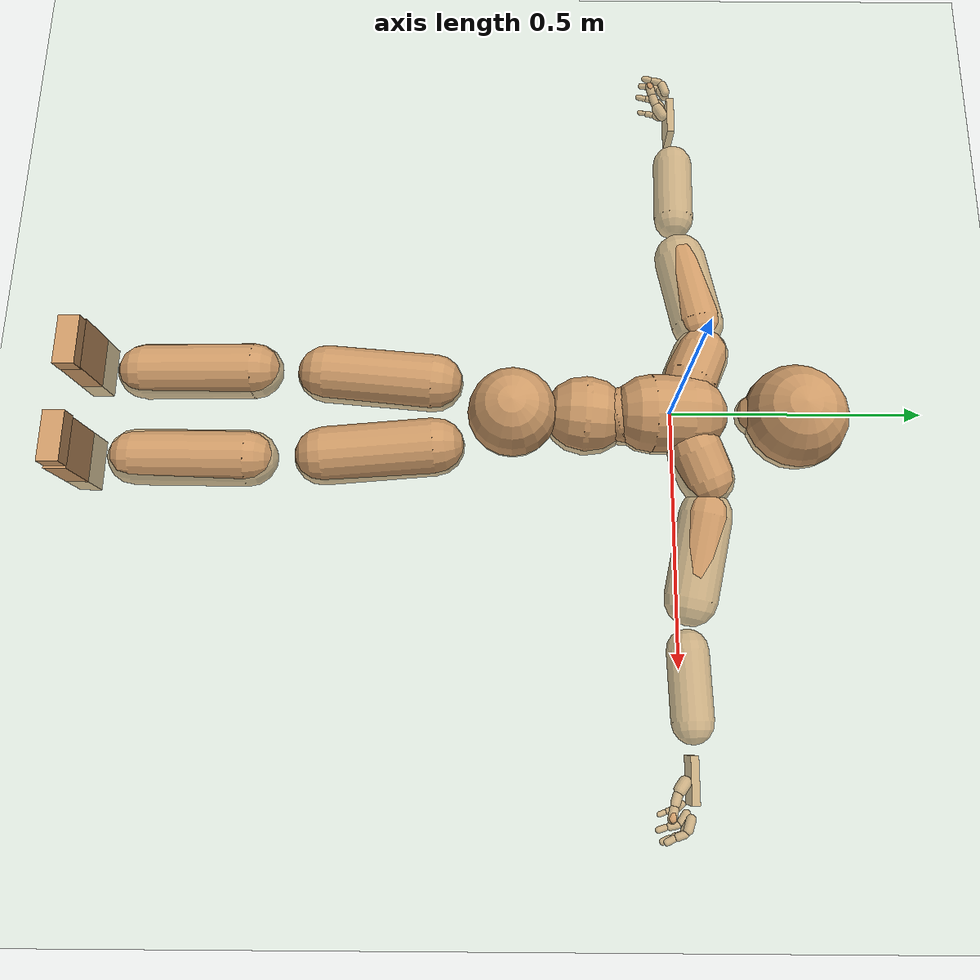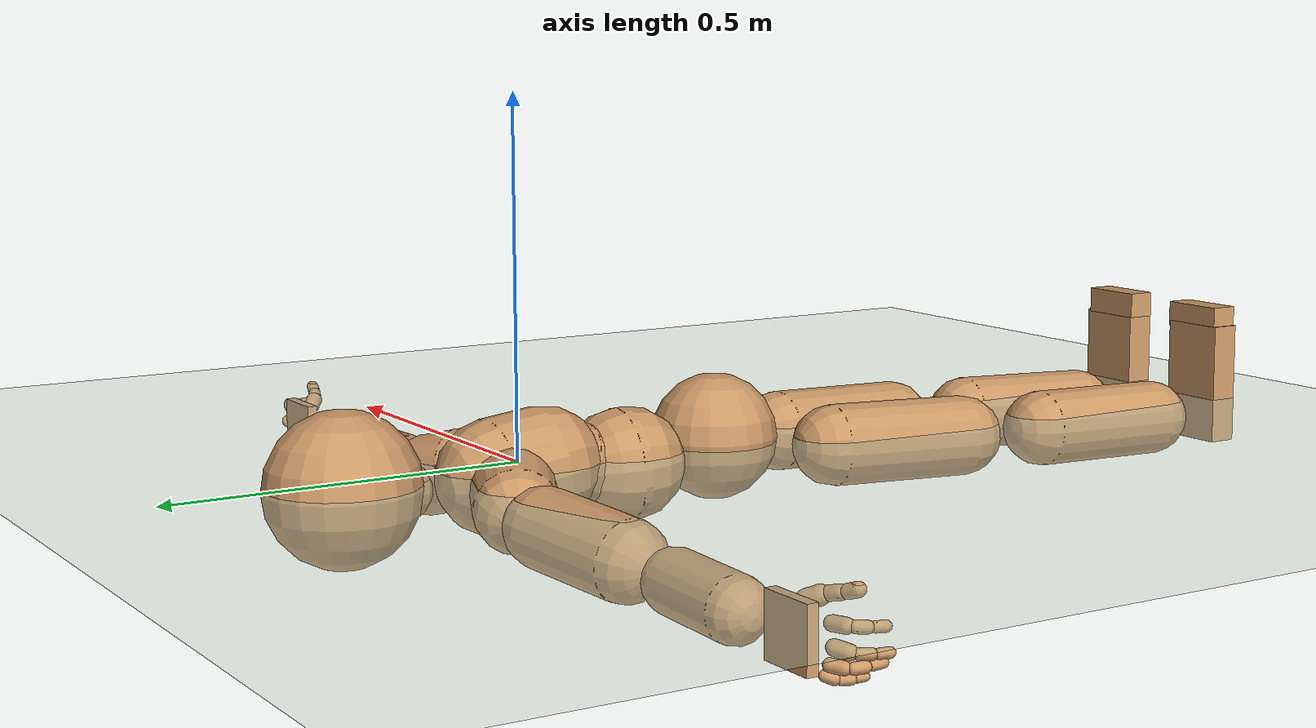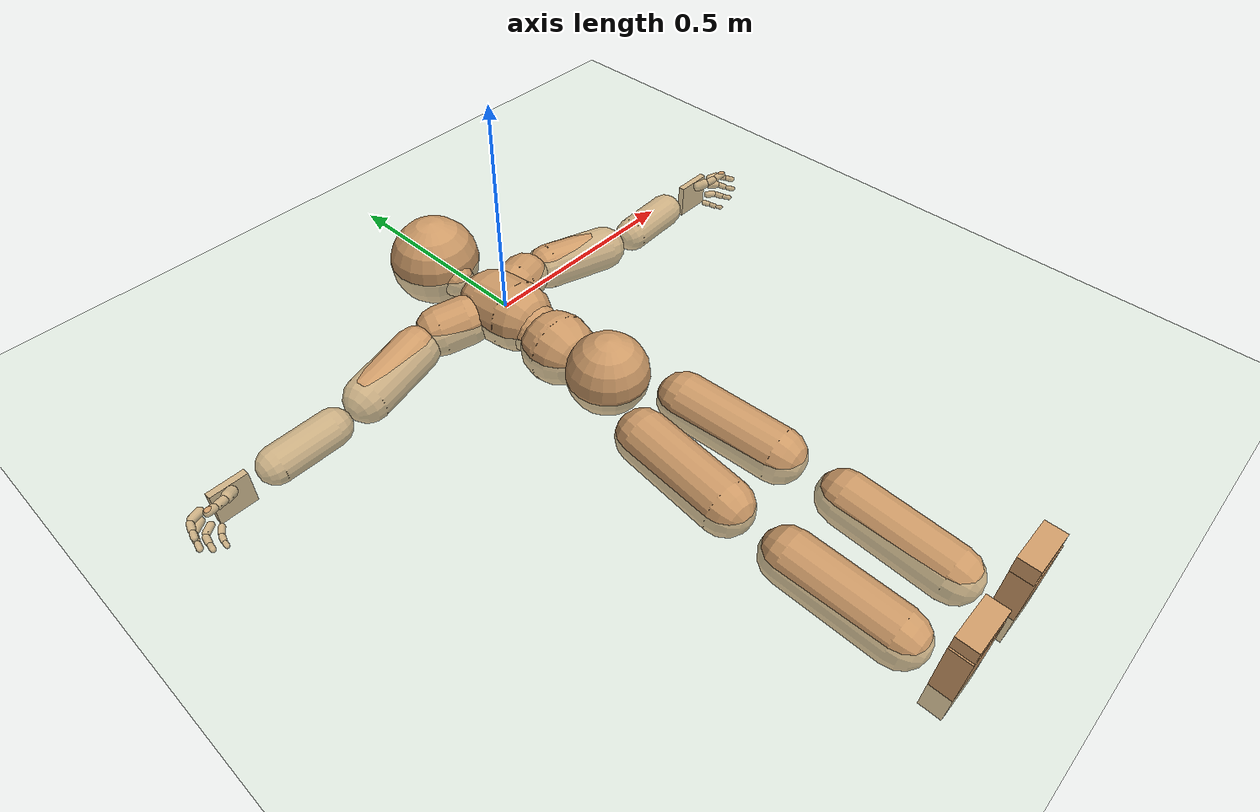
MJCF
<?xml version='1.0' encoding='utf-8'?>
<mujoco model="smplx_mapped_s94">
  <compiler coordinate="local" />
  <default>
    <joint damping="0.0" armature="0.01" stiffness="0.0" limited="true" />
    <geom conaffinity="1" condim="3" contype="7" margin="0.001" rgba="0.8 0.6 .4 1" />
  </default>
  <asset>
    <texture type="skybox" builtin="gradient" rgb1=".4 .5 .6" rgb2="0 0 0" width="100" height="100" />
    <texture builtin="flat" height="1278" mark="cross" markrgb="1 1 1" name="texgeom" random="0.01" rgb1="0.8 0.6 0.4" rgb2="0.8 0.6 0.4" type="cube" width="127" />
    <texture builtin="checker" height="100" name="texplane" rgb1="0 0 0" rgb2="0.8 0.8 0.8" type="2d" width="100" />
    <material name="MatPlane" reflectance="0.5" shininess="1" specular="1" texrepeat="60 60" texture="texplane" />
    <material name="geom" texture="texgeom" texuniform="true" />
  </asset>
  <worldbody>
    <light cutoff="100" diffuse="1 1 1" dir="-0 0 -1.3" directional="true" exponent="1" pos="0 0 1.3" specular=".1 .1 .1" />
    <geom conaffinity="1" condim="3" name="floor" pos="0 0 0" rgba="0.8 0.9 0.8 1" size="100 100 .2" type="plane" material="MatPlane" />
    <body name="Pelvis" pos="0.0003 -0.3142 0.0046">
      <freejoint name="Pelvis" />
      <geom type="sphere" contype="1" conaffinity="1" density="4629.6296296296305" size="0.09" pos="0.0000 0.0000 0.0000" name="Pelvis" />
      <body name="L_Hip" pos="0.0614 -0.0800 -0.0172">
        <joint name="L_Hip_x" type="hinge" pos="0 0 0" axis="1 0 0" stiffness="800" damping="80" armature="0.02" range="-150.00 150.00" />
        <joint name="L_Hip_y" type="hinge" pos="0 0 0" axis="0 1 0" stiffness="800" damping="80" armature="0.02" range="-150.00 150.00" />
        <joint name="L_Hip_z" type="hinge" pos="0 0 0" axis="0 0 1" stiffness="800" damping="80" armature="0.02" range="-150.00 150.00" />
        <geom type="capsule" contype="1" conaffinity="1" density="2040.816327" fromto="0.0060 -0.0740 -0.0028 0.0238 -0.2960 -0.0111" size="0.059" />
        <body name="L_Knee" pos="0.0298 -0.3700 -0.0138">
          <joint name="L_Knee_x" type="hinge" pos="0 0 0" axis="1 0 0" stiffness="800" damping="80" armature="0.02" range="-150.00 150.00" />
          <joint name="L_Knee_y" type="hinge" pos="0 0 0" axis="0 1 0" stiffness="800" damping="80" armature="0.02" range="-150.00 150.00" />
          <joint name="L_Knee_z" type="hinge" pos="0 0 0" axis="0 0 1" stiffness="800" damping="80" armature="0.02" range="-150.00 150.00" />
          <geom type="capsule" contype="1" conaffinity="1" density="1234.567901" fromto="-0.0012 -0.0763 -0.0027 -0.0049 -0.3054 -0.0109" size="0.0564" />
          <body name="L_Ankle" pos="-0.0062 -0.3817 -0.0136">
            <joint name="L_Ankle_x" type="hinge" pos="0 0 0" axis="1 0 0" stiffness="800" damping="80" armature="0.02" range="-150.00 150.00" />
            <joint name="L_Ankle_y" type="hinge" pos="0 0 0" axis="0 1 0" stiffness="800" damping="80" armature="0.02" range="-150.00 150.00" />
            <joint name="L_Ankle_z" type="hinge" pos="0 0 0" axis="0 0 1" stiffness="800" damping="80" armature="0.02" range="-150.00 150.00" />
            <geom type="box" contype="1" conaffinity="1" density="1000" pos="0.0115 -0.0234 0.0566" size="0.0502 0.0216 0.0909" quat="1.0000 0.0000 0.0000 0.0000" />
            <body name="L_Toe" pos="0.0197 -0.0452 0.1067">
              <joint name="L_Toe_x" type="hinge" pos="0 0 0" axis="1 0 0" stiffness="500" damping="50" armature="0.02" range="-150.00 150.00" />
              <joint name="L_Toe_y" type="hinge" pos="0 0 0" axis="0 1 0" stiffness="500" damping="50" armature="0.02" range="-150.00 150.00" />
              <joint name="L_Toe_z" type="hinge" pos="0 0 0" axis="0 0 1" stiffness="500" damping="50" armature="0.02" range="-150.00 150.00" />
              <geom type="box" contype="1" conaffinity="1" density="1000" pos="-0.0115 0.0227 0.0576" size="0.0493 0.0209 0.0194" quat="1.0000 0.0000 0.0000 0.0000" />
            </body>
          </body>
        </body>
      </body>
      <body name="R_Hip" pos="-0.0601 -0.0866 -0.0183">
        <joint name="R_Hip_x" type="hinge" pos="0 0 0" axis="1 0 0" stiffness="800" damping="80" armature="0.02" range="-150.00 150.00" />
        <joint name="R_Hip_y" type="hinge" pos="0 0 0" axis="0 1 0" stiffness="800" damping="80" armature="0.02" range="-150.00 150.00" />
        <joint name="R_Hip_z" type="hinge" pos="0 0 0" axis="0 0 1" stiffness="800" damping="80" armature="0.02" range="-150.00 150.00" />
        <geom type="capsule" contype="1" conaffinity="1" density="2040.816327" fromto="-0.0067 -0.0731 -0.0017 -0.0268 -0.2926 -0.0067" size="0.0588" />
        <body name="R_Knee" pos="-0.0335 -0.3657 -0.0084">
          <joint name="R_Knee_x" type="hinge" pos="0 0 0" axis="1 0 0" stiffness="800" damping="80" armature="0.02" range="-150.00 150.00" />
          <joint name="R_Knee_y" type="hinge" pos="0 0 0" axis="0 1 0" stiffness="800" damping="80" armature="0.02" range="-150.00 150.00" />
          <joint name="R_Knee_z" type="hinge" pos="0 0 0" axis="0 0 1" stiffness="800" damping="80" armature="0.02" range="-150.00 150.00" />
          <geom type="capsule" contype="1" conaffinity="1" density="1234.567901" fromto="0.0003 -0.0746 -0.0019 0.0013 -0.2986 -0.0075" size="0.0564" />
          <body name="R_Ankle" pos="0.0016 -0.3732 -0.0093">
            <joint name="R_Ankle_x" type="hinge" pos="0 0 0" axis="1 0 0" stiffness="800" damping="80" armature="0.02" range="-150.00 150.00" />
            <joint name="R_Ankle_y" type="hinge" pos="0 0 0" axis="0 1 0" stiffness="800" damping="80" armature="0.02" range="-150.00 150.00" />
            <joint name="R_Ankle_z" type="hinge" pos="0 0 0" axis="0 0 1" stiffness="800" damping="80" armature="0.02" range="-150.00 150.00" />
            <geom type="box" contype="1" conaffinity="1" density="1000" pos="-0.0091 -0.0250 0.0535" size="0.0502 0.0216 0.0909" quat="1.0000 0.0000 0.0000 0.0000" />
            <body name="R_Toe" pos="-0.0155 -0.0490 0.1002">
              <joint name="R_Toe_x" type="hinge" pos="0 0 0" axis="1 0 0" stiffness="500" damping="50" armature="0.02" range="-150.00 150.00" />
              <joint name="R_Toe_y" type="hinge" pos="0 0 0" axis="0 1 0" stiffness="500" damping="50" armature="0.02" range="-150.00 150.00" />
              <joint name="R_Toe_z" type="hinge" pos="0 0 0" axis="0 0 1" stiffness="500" damping="50" armature="0.02" range="-150.00 150.00" />
              <geom type="box" contype="1" conaffinity="1" density="1000" pos="0.0091 0.0243 0.0545" size="0.0493 0.0209 0.0194" quat="1.0000 0.0000 0.0000 0.0000" />
            </body>
          </body>
        </body>
      </body>
      <body name="Torso" pos="-0.0047 0.0903 -0.0218">
        <joint name="Torso_x" type="hinge" pos="0 0 0" axis="1 0 0" stiffness="1000" damping="100" armature="0.02" range="-150.00 150.00" />
        <joint name="Torso_y" type="hinge" pos="0 0 0" axis="0 1 0" stiffness="1000" damping="100" armature="0.02" range="-150.00 150.00" />
        <joint name="Torso_z" type="hinge" pos="0 0 0" axis="0 0 1" stiffness="1000" damping="100" armature="0.02" range="-150.00 150.00" />
        <geom type="capsule" contype="1" conaffinity="1" density="1100" fromto="0.0037 0.0514 -0.0024 0.0045 0.0628 -0.0030" size="0.08" />
        <body name="Spine" pos="0.0081 0.1141 -0.0054">
          <joint name="Spine_x" type="hinge" pos="0 0 0" axis="1 0 0" stiffness="1000" damping="100" armature="0.02" range="-150.00 150.00" />
          <joint name="Spine_y" type="hinge" pos="0 0 0" axis="0 1 0" stiffness="1000" damping="100" armature="0.02" range="-150.00 150.00" />
          <joint name="Spine_z" type="hinge" pos="0 0 0" axis="0 0 1" stiffness="1000" damping="100" armature="0.02" range="-150.00 150.00" />
          <geom type="capsule" contype="1" conaffinity="1" density="1100" fromto="-0.0017 0.0202 0.0092 -0.0021 0.0247 0.0113" size="0.06" />
          <body name="Chest" pos="-0.0038 0.0449 0.0205">
            <joint name="Chest_x" type="hinge" pos="0 0 0" axis="1 0 0" stiffness="1000" damping="100" armature="0.02" range="-150.00 150.00" />
            <joint name="Chest_y" type="hinge" pos="0 0 0" axis="0 1 0" stiffness="1000" damping="100" armature="0.02" range="-150.00 150.00" />
            <joint name="Chest_z" type="hinge" pos="0 0 0" axis="0 0 1" stiffness="1000" damping="100" armature="0.02" range="-150.00 150.00" />
            <geom type="capsule" contype="1" conaffinity="1" density="1100" fromto="-0.0006 0.0256 -0.0031 -0.0025 0.1025 -0.0124" size="0.08" />
            <body name="Neck" pos="-0.0059 0.1774 -0.0235">
              <joint name="Neck_x" type="hinge" pos="0 0 0" axis="1 0 0" stiffness="500" damping="50" armature="0.02" range="-150.00 150.00" />
              <joint name="Neck_y" type="hinge" pos="0 0 0" axis="0 1 0" stiffness="500" damping="50" armature="0.02" range="-150.00 150.00" />
              <joint name="Neck_z" type="hinge" pos="0 0 0" axis="0 0 1" stiffness="500" damping="50" armature="0.02" range="-150.00 150.00" />
              <geom type="capsule" contype="1" conaffinity="1" density="1000" fromto="0.0039 0.0630 0.0081 0.0048 0.0770 0.0099" size="0.0437" />
              <body name="Head" pos="0.0088 0.1399 0.0180">
                <joint name="Head_x" type="hinge" pos="0 0 0" axis="1 0 0" stiffness="500" damping="50" armature="0.02" range="-150.00 150.00" />
                <joint name="Head_y" type="hinge" pos="0 0 0" axis="0 1 0" stiffness="500" damping="50" armature="0.02" range="-150.00 150.00" />
                <joint name="Head_z" type="hinge" pos="0 0 0" axis="0 0 1" stiffness="500" damping="50" armature="0.02" range="-150.00 150.00" />
                <geom type="sphere" contype="1" conaffinity="1" density="1000" size="0.1054" pos="0.0000 0.0000 0.0000" name="Head" />
              </body>
            </body>
            <body name="L_Thorax" pos="0.0511 0.1053 -0.0085">
              <joint name="L_Thorax_x" type="hinge" pos="0 0 0" axis="1 0 0" stiffness="500" damping="50" armature="0.02" range="-150.00 150.00" />
              <joint name="L_Thorax_y" type="hinge" pos="0 0 0" axis="0 1 0" stiffness="500" damping="50" armature="0.02" range="-150.00 150.00" />
              <joint name="L_Thorax_z" type="hinge" pos="0 0 0" axis="0 0 1" stiffness="500" damping="50" armature="0.02" range="-150.00 150.00" />
              <geom type="capsule" contype="1" conaffinity="1" density="1000" fromto="0.0186 0.0081 -0.0049 0.0746 0.0326 -0.0196" size="0.0564" />
              <body name="L_Shoulder" pos="0.0932 0.0407 -0.0245">
                <joint name="L_Shoulder_x" type="hinge" pos="0 0 0" axis="1 0 0" stiffness="500" damping="50" armature="0.02" range="-150.00 150.00" />
                <joint name="L_Shoulder_y" type="hinge" pos="0 0 0" axis="0 1 0" stiffness="500" damping="50" armature="0.02" range="-150.00 150.00" />
                <joint name="L_Shoulder_z" type="hinge" pos="0 0 0" axis="0 0 1" stiffness="500" damping="50" armature="0.02" range="-150.00 150.00" />
                <geom type="capsule" contype="1" conaffinity="1" density="1000" fromto="0.0543 -0.0109 -0.0060 0.2171 -0.0436 -0.0241" size="0.0533" />
                <body name="L_Elbow" pos="0.2714 -0.0545 -0.0301">
                  <joint name="L_Elbow_x" type="hinge" pos="0 0 0" axis="1 0 0" stiffness="500" damping="50" armature="0.02" range="-150.00 150.00" />
                  <joint name="L_Elbow_y" type="hinge" pos="0 0 0" axis="0 1 0" stiffness="500" damping="50" armature="0.02" range="-150.00 150.00" />
                  <joint name="L_Elbow_z" type="hinge" pos="0 0 0" axis="0 0 1" stiffness="500" damping="50" armature="0.02" range="-150.00 150.00" />
                  <geom type="capsule" contype="1" conaffinity="1" density="1000" fromto="0.0445 0.0015 0.0008 0.1780 0.0060 0.0033" size="0.0418" />
                  <body name="L_Wrist" pos="0.2367 0.0094 0.0059">
                    <joint name="L_Wrist_x" type="hinge" pos="0 0 0" axis="1 0 0" stiffness="300" damping="30" armature="0.02" range="-180.0000 180.0000"/>
                    <joint name="L_Wrist_y" type="hinge" pos="0 0 0" axis="0 1 0" stiffness="300" damping="30" armature="0.02" range="-180.0000 180.0000"/>
                    <joint name="L_Wrist_z" type="hinge" pos="0 0 0" axis="0 0 1" stiffness="300" damping="30" armature="0.02" range="-180.0000 180.0000"/>
                    <geom type="box" contype="1" conaffinity="1" density="1000" pos="0.0456 -0.0084 -0.0022" size="0.0444 0.0076 0.0414" quat="1.0000 0.0000 0.0000 0.0000"/>
                    <body name="L_Index1" pos="0.107 -0.0141 0.0212">
                      <joint name="L_Index1_x" type="hinge" pos="0 0 0" axis="1 0 0" stiffness="100" damping="10" armature="0.02" range="-5.6250 5.6250"/>
                      <joint name="L_Index1_y" type="hinge" pos="0 0 0" axis="0 1 0" stiffness="100" damping="10" armature="0.02" range="-5.6250 5.6250"/>
                      <joint name="L_Index1_z" type="hinge" pos="0 0 0" axis="0 0 1" stiffness="100" damping="10" armature="0.02" range="-55.6250 55.6250"/>
                      <geom type="capsule" contype="1" conaffinity="1" density="1000" fromto="0.0061 -0.0021 0.0001 0.0246 -0.0082 0.0006" size="0.0093"/>
                      <body name="L_Index2" pos="0.0307 -0.0103 0.0007">
                        <joint name="L_Index2_x" type="hinge" pos="0 0 0" axis="1 0 0" stiffness="100" damping="10" armature="0.02" range="-5.6250 5.6250"/>
                        <joint name="L_Index2_y" type="hinge" pos="0 0 0" axis="0 1 0" stiffness="100" damping="10" armature="0.02" range="-5.6250 5.6250"/>
                        <joint name="L_Index2_z" type="hinge" pos="0 0 0" axis="0 0 1" stiffness="100" damping="10" armature="0.02" range="-55.6250 55.6250"/>
                        <geom type="capsule" contype="1" conaffinity="1" density="1000" fromto="0.0015 -0.0043 -0.0004 0.0059 -0.0170 -0.0017" size="0.0076"/>
                        <body name="L_Index3" pos="0.0074 -0.0213 -0.0021">
                          <joint name="L_Index3_x" type="hinge" pos="0 0 0" axis="1 0 0" stiffness="100" damping="10" armature="0.02" range="-5.6250 5.6250"/>
                          <joint name="L_Index3_y" type="hinge" pos="0 0 0" axis="0 1 0" stiffness="100" damping="10" armature="0.02" range="-5.6250 5.6250"/>
                          <joint name="L_Index3_z" type="hinge" pos="0 0 0" axis="0 0 1" stiffness="100" damping="10" armature="0.02" range="-90.0000 5.6250"/>
                          <geom type="capsule" contype="1" conaffinity="1" density="1000" fromto="0.0019 -0.0039 -0.0000 0.0075 -0.0154 -0.0001" size="0.0067"/>
                        </body>
                      </body>
                    </body>
                    <body name="L_Middle1" pos="0.1143 -0.0116 -0.0028">
                      <joint name="L_Middle1_x" type="hinge" pos="0 0 0" axis="1 0 0" stiffness="100" damping="10" armature="0.02" range="-5.6250 5.6250"/>
                      <joint name="L_Middle1_y" type="hinge" pos="0 0 0" axis="0 1 0" stiffness="100" damping="10" armature="0.02" range="-5.6250 5.6250"/>
                      <joint name="L_Middle1_z" type="hinge" pos="0 0 0" axis="0 0 1" stiffness="100" damping="10" armature="0.02" range="-55.6250 55.6250"/>
                      <geom type="capsule" contype="1" conaffinity="1" density="1000" fromto="0.0054 -0.0029 -0.0010 0.0214 -0.0116 -0.0039" size="0.0096"/>
                      <body name="L_Middle2" pos="0.0268 -0.0145 -0.0048">
                        <joint name="L_Middle2_x" type="hinge" pos="0 0 0" axis="1 0 0" stiffness="100" damping="10" armature="0.02" range="-5.6250 5.6250"/>
                        <joint name="L_Middle2_y" type="hinge" pos="0 0 0" axis="0 1 0" stiffness="100" damping="10" armature="0.02" range="-5.6250 5.6250"/>
                        <joint name="L_Middle2_z" type="hinge" pos="0 0 0" axis="0 0 1" stiffness="100" damping="10" armature="0.02" range="-55.6250 55.6250"/>
                        <geom type="capsule" contype="1" conaffinity="1" density="1000" fromto="0.0013 -0.0046 -0.0004 0.0051 -0.0184 -0.0017" size="0.0071"/>
                        <body name="L_Middle3" pos="0.0063 -0.023 -0.0021">
                          <joint name="L_Middle3_x" type="hinge" pos="0 0 0" axis="1 0 0" stiffness="100" damping="10" armature="0.02" range="-5.6250 5.6250"/>
                          <joint name="L_Middle3_y" type="hinge" pos="0 0 0" axis="0 1 0" stiffness="100" damping="10" armature="0.02" range="-5.6250 5.6250"/>
                          <joint name="L_Middle3_z" type="hinge" pos="0 0 0" axis="0 0 1" stiffness="100" damping="10" armature="0.02" range="-90.0000 5.6250"/>
                          <geom type="capsule" contype="1" conaffinity="1" density="1000" fromto="0.0017 -0.0042 -0.0000 0.0067 -0.0168 -0.0001" size="0.0064"/>
                        </body>
                      </body>
                    </body>
                    <body name="L_Pinky1" pos="0.088 -0.0204 -0.0428">
                      <joint name="L_Pinky1_x" type="hinge" pos="0 0 0" axis="1 0 0" stiffness="100" damping="10" armature="0.02" range="-5.6250 5.6250"/>
                      <joint name="L_Pinky1_y" type="hinge" pos="0 0 0" axis="0 1 0" stiffness="100" damping="10" armature="0.02" range="-5.6250 5.6250"/>
                      <joint name="L_Pinky1_z" type="hinge" pos="0 0 0" axis="0 0 1" stiffness="100" damping="10" armature="0.02" range="-55.6250 55.6250"/>
                      <geom type="capsule" contype="1" conaffinity="1" density="1000" fromto="0.0024 -0.0028 -0.0012 0.0097 -0.0110 -0.0047" size="0.0071"/>
                      <body name="L_Pinky2" pos="0.0122 -0.0138 -0.0058">
                        <joint name="L_Pinky2_x" type="hinge" pos="0 0 0" axis="1 0 0" stiffness="100" damping="10" armature="0.02" range="-5.6250 5.6250"/>
                        <joint name="L_Pinky2_y" type="hinge" pos="0 0 0" axis="0 1 0" stiffness="100" damping="10" armature="0.02" range="-5.6250 5.6250"/>
                        <joint name="L_Pinky2_z" type="hinge" pos="0 0 0" axis="0 0 1" stiffness="100" damping="10" armature="0.02" range="-55.6250 55.6250"/>
                        <geom type="capsule" contype="1" conaffinity="1" density="1000" fromto="0.0008 -0.0037 -0.0001 0.0033 -0.0149 -0.0005" size="0.0064"/>
                        <body name="L_Pinky3" pos="0.0042 -0.0186 -0.0006">
                          <joint name="L_Pinky3_x" type="hinge" pos="0 0 0" axis="1 0 0" stiffness="100" damping="10" armature="0.02" range="-5.6250 5.6250"/>
                          <joint name="L_Pinky3_y" type="hinge" pos="0 0 0" axis="0 1 0" stiffness="100" damping="10" armature="0.02" range="-5.6250 5.6250"/>
                          <joint name="L_Pinky3_z" type="hinge" pos="0 0 0" axis="0 0 1" stiffness="100" damping="10" armature="0.02" range="-90.0000 5.6250"/>
                          <geom type="capsule" contype="1" conaffinity="1" density="1000" fromto="0.0012 -0.0033 0.0003 0.0049 -0.0133 0.0011" size="0.0051"/>
                        </body>
                      </body>
                    </body>
                    <body name="L_Ring1" pos="0.1018 -0.0147 -0.0267">
                      <joint name="L_Ring1_x" type="hinge" pos="0 0 0" axis="1 0 0" stiffness="100" damping="10" armature="0.02" range="-5.6250 5.6250"/>
                      <joint name="L_Ring1_y" type="hinge" pos="0 0 0" axis="0 1 0" stiffness="100" damping="10" armature="0.02" range="-5.6250 5.6250"/>
                      <joint name="L_Ring1_z" type="hinge" pos="0 0 0" axis="0 0 1" stiffness="100" damping="10" armature="0.02" range="-55.6250 55.6250"/>
                      <geom type="capsule" contype="1" conaffinity="1" density="1000" fromto="0.0048 -0.0032 -0.0005 0.0191 -0.0126 -0.0019" size="0.0082"/>
                      <body name="L_Ring2" pos="0.0239 -0.0158 -0.0023">
                        <joint name="L_Ring2_x" type="hinge" pos="0 0 0" axis="1 0 0" stiffness="100" damping="10" armature="0.02" range="-5.6250 5.6250"/>
                        <joint name="L_Ring2_y" type="hinge" pos="0 0 0" axis="0 1 0" stiffness="100" damping="10" armature="0.02" range="-5.6250 5.6250"/>
                        <joint name="L_Ring2_z" type="hinge" pos="0 0 0" axis="0 0 1" stiffness="100" damping="10" armature="0.02" range="-55.6250 55.6250"/>
                        <geom type="capsule" contype="1" conaffinity="1" density="1000" fromto="0.0009 -0.0047 0.0001 0.0036 -0.0187 0.0003" size="0.0073"/>
                        <body name="L_Ring3" pos="0.0045 -0.0234 0.0004">
                          <joint name="L_Ring3_x" type="hinge" pos="0 0 0" axis="1 0 0" stiffness="100" damping="10" armature="0.02" range="-5.6250 5.6250"/>
                          <joint name="L_Ring3_y" type="hinge" pos="0 0 0" axis="0 1 0" stiffness="100" damping="10" armature="0.02" range="-5.6250 5.6250"/>
                          <joint name="L_Ring3_z" type="hinge" pos="0 0 0" axis="0 0 1" stiffness="100" damping="10" armature="0.02" range="-90.0000 5.6250"/>
                          <geom type="capsule" contype="1" conaffinity="1" density="1000" fromto="0.0013 -0.0043 0.0005 0.0052 -0.0171 0.0019" size="0.0061"/>
                        </body>
                      </body>
                    </body>
                    <body name="L_Thumb1" pos="0.0444 -0.023 0.0287">
                      <joint name="L_Thumb1_x" type="hinge" pos="0 0 0" axis="1 0 0" stiffness="100" damping="10" armature="0.02" range="-55.6250 55.6250"/>
                      <joint name="L_Thumb1_y" type="hinge" pos="0 0 0" axis="0 1 0" stiffness="100" damping="10" armature="0.02" range="-55.6250 55.6250"/>
                      <joint name="L_Thumb1_z" type="hinge" pos="0 0 0" axis="0 0 1" stiffness="100" damping="10" armature="0.02" range="-55.6250 55.6250"/>
                      <geom type="capsule" contype="1" conaffinity="1" density="1000" fromto="0.0044 -0.0035 0.0022 0.0176 -0.0139 0.0089" size="0.0123"/>
                      <body name="L_Thumb2" pos="0.022 -0.0174 0.0112">
                        <joint name="L_Thumb2_x" type="hinge" pos="0 0 0" axis="1 0 0" stiffness="100" damping="10" armature="0.02" range="-5.6250 5.6250"/>
                        <joint name="L_Thumb2_y" type="hinge" pos="0 0 0" axis="0 1 0" stiffness="100" damping="10" armature="0.02" range="-5.6250 5.6250"/>
                        <joint name="L_Thumb2_z" type="hinge" pos="0 0 0" axis="0 0 1" stiffness="100" damping="10" armature="0.02" range="-5.6250 5.6250"/>
                        <geom type="capsule" contype="1" conaffinity="1" density="1000" fromto="0.0048 -0.0018 0.0011 0.0191 -0.0071 0.0044" size="0.0093"/>
                        <body name="L_Thumb3" pos="0.0239 -0.0088 0.0055">
                          <joint name="L_Thumb3_x" type="hinge" pos="0 0 0" axis="1 0 0" stiffness="100" damping="10" armature="0.02" range="-5.6250 5.6250"/>
                          <joint name="L_Thumb3_y" type="hinge" pos="0 0 0" axis="0 1 0" stiffness="100" damping="10" armature="0.02" range="-5.6250 5.6250"/>
                          <joint name="L_Thumb3_z" type="hinge" pos="0 0 0" axis="0 0 1" stiffness="100" damping="10" armature="0.02" range="-90.0000 5.6250"/>
                          <geom type="capsule" contype="1" conaffinity="1" density="1000" fromto="0.0052 -0.0014 0.0015 0.0207 -0.0055 0.0060" size="0.0088"/>
                        </body>
                      </body>
                    </body>
                  </body>
                </body>
              </body>
            </body>
            <body name="R_Thorax" pos="-0.0544 0.1016 -0.0144">
              <joint name="R_Thorax_x" type="hinge" pos="0 0 0" axis="1 0 0" stiffness="500" damping="50" armature="0.02" range="-150.00 150.00" />
              <joint name="R_Thorax_y" type="hinge" pos="0 0 0" axis="0 1 0" stiffness="500" damping="50" armature="0.02" range="-150.00 150.00" />
              <joint name="R_Thorax_z" type="hinge" pos="0 0 0" axis="0 0 1" stiffness="500" damping="50" armature="0.02" range="-150.00 150.00" />
              <geom type="capsule" contype="1" conaffinity="1" density="1000" fromto="-0.0201 0.0087 -0.0037 -0.0804 0.0349 -0.0146" size="0.0576" />
              <body name="R_Shoulder" pos="-0.1005 0.0436 -0.0183">
                <joint name="R_Shoulder_x" type="hinge" pos="0 0 0" axis="1 0 0" stiffness="500" damping="50" armature="0.02" range="-150.00 150.00" />
                <joint name="R_Shoulder_y" type="hinge" pos="0 0 0" axis="0 1 0" stiffness="500" damping="50" armature="0.02" range="-150.00 150.00" />
                <joint name="R_Shoulder_z" type="hinge" pos="0 0 0" axis="0 0 1" stiffness="500" damping="50" armature="0.02" range="-150.00 150.00" />
                <geom type="capsule" contype="1" conaffinity="1" density="1000" fromto="-0.0521 -0.0100 -0.0046 -0.2085 -0.0401 -0.0184" size="0.0538" />
                <body name="R_Elbow" pos="-0.2607 -0.0501 -0.0230">
                  <joint name="R_Elbow_x" type="hinge" pos="0 0 0" axis="1 0 0" stiffness="500" damping="50" armature="0.02" range="-150.00 150.00" />
                  <joint name="R_Elbow_y" type="hinge" pos="0 0 0" axis="0 1 0" stiffness="500" damping="50" armature="0.02" range="-150.00 150.00" />
                  <joint name="R_Elbow_z" type="hinge" pos="0 0 0" axis="0 0 1" stiffness="500" damping="50" armature="0.02" range="-150.00 150.00" />
                  <geom type="capsule" contype="1" conaffinity="1" density="1000" fromto="-0.0447 0.0006 -0.0009 -0.1787 0.0025 -0.0037" size="0.042" />
                  <body name="R_Wrist" pos="-0.2372 0.005 -0.0038">
                    <joint name="R_Wrist_x" type="hinge" pos="0 0 0" axis="1 0 0" stiffness="300" damping="30" armature="0.02" range="-180.0000 180.0000"/>
                    <joint name="R_Wrist_y" type="hinge" pos="0 0 0" axis="0 1 0" stiffness="300" damping="30" armature="0.02" range="-180.0000 180.0000"/>
                    <joint name="R_Wrist_z" type="hinge" pos="0 0 0" axis="0 0 1" stiffness="300" damping="30" armature="0.02" range="-180.0000 180.0000"/>
                    <geom type="box" contype="1" conaffinity="1" density="1000" pos="-0.0449 -0.0080 -0.0014" size="0.0416 0.0078 0.0414" quat="1.0000 0.0000 0.0000 0.0000"/>
                    <body name="R_Index1" pos="-0.1057 -0.0132 0.0229">
                      <joint name="R_Index1_x" type="hinge" pos="0 0 0" axis="1 0 0" stiffness="100" damping="10" armature="0.02" range="-5.6250 5.6250"/>
                      <joint name="R_Index1_y" type="hinge" pos="0 0 0" axis="0 1 0" stiffness="100" damping="10" armature="0.02" range="-5.6250 5.6250"/>
                      <joint name="R_Index1_z" type="hinge" pos="0 0 0" axis="0 0 1" stiffness="100" damping="10" armature="0.02" range="-55.6250 55.6250"/>
                      <geom type="capsule" contype="1" conaffinity="1" density="1000" fromto="-0.0061 -0.0021 0.0001 -0.0246 -0.0082 0.0006" size="0.0093"/>
                      <body name="R_Index2" pos="-0.0307 -0.0103 0.0007">
                        <joint name="R_Index2_x" type="hinge" pos="0 0 0" axis="1 0 0" stiffness="100" damping="10" armature="0.02" range="-5.6250 5.6250"/>
                        <joint name="R_Index2_y" type="hinge" pos="0 0 0" axis="0 1 0" stiffness="100" damping="10" armature="0.02" range="-5.6250 5.6250"/>
                        <joint name="R_Index2_z" type="hinge" pos="0 0 0" axis="0 0 1" stiffness="100" damping="10" armature="0.02" range="-55.6250 55.6250"/>
                        <geom type="capsule" contype="1" conaffinity="1" density="1000" fromto="-0.0015 -0.0043 -0.0004 -0.0059 -0.0170 -0.0017" size="0.0076"/>
                        <body name="R_Index3" pos="-0.0074 -0.0213 -0.0021">
                          <joint name="R_Index3_x" type="hinge" pos="0 0 0" axis="1 0 0" stiffness="100" damping="10" armature="0.02" range="-5.6250 5.6250"/>
                          <joint name="R_Index3_y" type="hinge" pos="0 0 0" axis="0 1 0" stiffness="100" damping="10" armature="0.02" range="-5.6250 5.6250"/>
                          <joint name="R_Index3_z" type="hinge" pos="0 0 0" axis="0 0 1" stiffness="100" damping="10" armature="0.02" range="-5.6250 90.0000"/>
                          <geom type="capsule" contype="1" conaffinity="1" density="1000" fromto="-0.0011 -0.0039 -0.0000 -0.0043 -0.0154 -0.0001" size="0.0068"/>
                        </body>
                      </body>
                    </body>
                    <body name="R_Middle1" pos="-0.113 -0.0107 -0.0011">
                      <joint name="R_Middle1_x" type="hinge" pos="0 0 0" axis="1 0 0" stiffness="100" damping="10" armature="0.02" range="-5.6250 5.6250"/>
                      <joint name="R_Middle1_y" type="hinge" pos="0 0 0" axis="0 1 0" stiffness="100" damping="10" armature="0.02" range="-5.6250 5.6250"/>
                      <joint name="R_Middle1_z" type="hinge" pos="0 0 0" axis="0 0 1" stiffness="100" damping="10" armature="0.02" range="-55.6250 55.6250"/>
                      <geom type="capsule" contype="1" conaffinity="1" density="1000" fromto="-0.0054 -0.0029 -0.0010 -0.0214 -0.0116 -0.0039" size="0.0096"/>
                      <body name="R_Middle2" pos="-0.0268 -0.0145 -0.0048">
                        <joint name="R_Middle2_x" type="hinge" pos="0 0 0" axis="1 0 0" stiffness="100" damping="10" armature="0.02" range="-5.6250 5.6250"/>
                        <joint name="R_Middle2_y" type="hinge" pos="0 0 0" axis="0 1 0" stiffness="100" damping="10" armature="0.02" range="-5.6250 5.6250"/>
                        <joint name="R_Middle2_z" type="hinge" pos="0 0 0" axis="0 0 1" stiffness="100" damping="10" armature="0.02" range="-55.6250 55.6250"/>
                        <geom type="capsule" contype="1" conaffinity="1" density="1000" fromto="-0.0013 -0.0046 -0.0004 -0.0051 -0.0184 -0.0017" size="0.0071"/>
                        <body name="R_Middle3" pos="-0.0063 -0.023 -0.0021">
                          <joint name="R_Middle3_x" type="hinge" pos="0 0 0" axis="1 0 0" stiffness="100" damping="10" armature="0.02" range="-5.6250 5.6250"/>
                          <joint name="R_Middle3_y" type="hinge" pos="0 0 0" axis="0 1 0" stiffness="100" damping="10" armature="0.02" range="-5.6250 5.6250"/>
                          <joint name="R_Middle3_z" type="hinge" pos="0 0 0" axis="0 0 1" stiffness="100" damping="10" armature="0.02" range="-5.6250 90.0000"/>
                          <geom type="capsule" contype="1" conaffinity="1" density="1000" fromto="-0.0009 -0.0042 -0.0000 -0.0035 -0.0168 -0.0001" size="0.0064"/>
                        </body>
                      </body>
                    </body>
                    <body name="R_Pinky1" pos="-0.0867 -0.0196 -0.0411">
                      <joint name="R_Pinky1_x" type="hinge" pos="0 0 0" axis="1 0 0" stiffness="100" damping="10" armature="0.02" range="-5.6250 5.6250"/>
                      <joint name="R_Pinky1_y" type="hinge" pos="0 0 0" axis="0 1 0" stiffness="100" damping="10" armature="0.02" range="-5.6250 5.6250"/>
                      <joint name="R_Pinky1_z" type="hinge" pos="0 0 0" axis="0 0 1" stiffness="100" damping="10" armature="0.02" range="-55.6250 55.6250"/>
                      <geom type="capsule" contype="1" conaffinity="1" density="1000" fromto="-0.0024 -0.0028 -0.0012 -0.0097 -0.0110 -0.0047" size="0.0071"/>
                      <body name="R_Pinky2" pos="-0.0122 -0.0138 -0.0058">
                        <joint name="R_Pinky2_x" type="hinge" pos="0 0 0" axis="1 0 0" stiffness="100" damping="10" armature="0.02" range="-5.6250 5.6250"/>
                        <joint name="R_Pinky2_y" type="hinge" pos="0 0 0" axis="0 1 0" stiffness="100" damping="10" armature="0.02" range="-5.6250 5.6250"/>
                        <joint name="R_Pinky2_z" type="hinge" pos="0 0 0" axis="0 0 1" stiffness="100" damping="10" armature="0.02" range="-55.6250 55.6250"/>
                        <geom type="capsule" contype="1" conaffinity="1" density="1000" fromto="-0.0008 -0.0037 -0.0001 -0.0033 -0.0149 -0.0005" size="0.0064"/>
                        <body name="R_Pinky3" pos="-0.0042 -0.0186 -0.0006">
                          <joint name="R_Pinky3_x" type="hinge" pos="0 0 0" axis="1 0 0" stiffness="100" damping="10" armature="0.02" range="-5.6250 5.6250"/>
                          <joint name="R_Pinky3_y" type="hinge" pos="0 0 0" axis="0 1 0" stiffness="100" damping="10" armature="0.02" range="-5.6250 5.6250"/>
                          <joint name="R_Pinky3_z" type="hinge" pos="0 0 0" axis="0 0 1" stiffness="100" damping="10" armature="0.02" range="-5.6250 90.0000"/>
                          <geom type="capsule" contype="1" conaffinity="1" density="1000" fromto="-0.0004 -0.0033 0.0003 -0.0017 -0.0133 0.0011" size="0.0052"/>
                        </body>
                      </body>
                    </body>
                    <body name="R_Ring1" pos="-0.1005 -0.0139 -0.025">
                      <joint name="R_Ring1_x" type="hinge" pos="0 0 0" axis="1 0 0" stiffness="100" damping="10" armature="0.02" range="-5.6250 5.6250"/>
                      <joint name="R_Ring1_y" type="hinge" pos="0 0 0" axis="0 1 0" stiffness="100" damping="10" armature="0.02" range="-5.6250 5.6250"/>
                      <joint name="R_Ring1_z" type="hinge" pos="0 0 0" axis="0 0 1" stiffness="100" damping="10" armature="0.02" range="-55.6250 55.6250"/>
                      <geom type="capsule" contype="1" conaffinity="1" density="1000" fromto="-0.0048 -0.0032 -0.0005 -0.0191 -0.0126 -0.0019" size="0.0082"/>
                      <body name="R_Ring2" pos="-0.0238 -0.0158 -0.0023">
                        <joint name="R_Ring2_x" type="hinge" pos="0 0 0" axis="1 0 0" stiffness="100" damping="10" armature="0.02" range="-5.6250 5.6250"/>
                        <joint name="R_Ring2_y" type="hinge" pos="0 0 0" axis="0 1 0" stiffness="100" damping="10" armature="0.02" range="-5.6250 5.6250"/>
                        <joint name="R_Ring2_z" type="hinge" pos="0 0 0" axis="0 0 1" stiffness="100" damping="10" armature="0.02" range="-55.6250 55.6250"/>
                        <geom type="capsule" contype="1" conaffinity="1" density="1000" fromto="-0.0009 -0.0047 0.0001 -0.0036 -0.0187 0.0003" size="0.0073"/>
                        <body name="R_Ring3" pos="-0.0045 -0.0234 0.0004">
                          <joint name="R_Ring3_x" type="hinge" pos="0 0 0" axis="1 0 0" stiffness="100" damping="10" armature="0.02" range="-5.6250 5.6250"/>
                          <joint name="R_Ring3_y" type="hinge" pos="0 0 0" axis="0 1 0" stiffness="100" damping="10" armature="0.02" range="-5.6250 5.6250"/>
                          <joint name="R_Ring3_z" type="hinge" pos="0 0 0" axis="0 0 1" stiffness="100" damping="10" armature="0.02" range="-5.6250 90.0000"/>
                          <geom type="capsule" contype="1" conaffinity="1" density="1000" fromto="-0.0005 -0.0043 0.0005 -0.0020 -0.0171 0.0019" size="0.0061"/>
                        </body>
                      </body>
                    </body>
                    <body name="R_Thumb1" pos="-0.043 -0.0222 0.0304">
                      <joint name="R_Thumb1_x" type="hinge" pos="0 0 0" axis="1 0 0" stiffness="100" damping="10" armature="0.02" range="-55.6250 55.6250"/>
                      <joint name="R_Thumb1_y" type="hinge" pos="0 0 0" axis="0 1 0" stiffness="100" damping="10" armature="0.02" range="-55.6250 55.6250"/>
                      <joint name="R_Thumb1_z" type="hinge" pos="0 0 0" axis="0 0 1" stiffness="100" damping="10" armature="0.02" range="-55.6250 55.6250"/>
                      <geom type="capsule" contype="1" conaffinity="1" density="1000" fromto="-0.0044 -0.0035 0.0022 -0.0176 -0.0139 0.0089" size="0.0123"/>
                      <body name="R_Thumb2" pos="-0.022 -0.0174 0.0112">
                        <joint name="R_Thumb2_x" type="hinge" pos="0 0 0" axis="1 0 0" stiffness="100" damping="10" armature="0.02" range="-5.6250 5.6250"/>
                        <joint name="R_Thumb2_y" type="hinge" pos="0 0 0" axis="0 1 0" stiffness="100" damping="10" armature="0.02" range="-5.6250 5.6250"/>
                        <joint name="R_Thumb2_z" type="hinge" pos="0 0 0" axis="0 0 1" stiffness="100" damping="10" armature="0.02" range="-5.6250 5.6250"/>
                        <geom type="capsule" contype="1" conaffinity="1" density="1000" fromto="-0.0048 -0.0018 0.0011 -0.0191 -0.0071 0.0044" size="0.0093"/>
                        <body name="R_Thumb3" pos="-0.0239 -0.0088 0.0055">
                          <joint name="R_Thumb3_x" type="hinge" pos="0 0 0" axis="1 0 0" stiffness="100" damping="10" armature="0.02" range="-5.6250 5.6250"/>
                          <joint name="R_Thumb3_y" type="hinge" pos="0 0 0" axis="0 1 0" stiffness="100" damping="10" armature="0.02" range="-5.6250 5.6250"/>
                          <joint name="R_Thumb3_z" type="hinge" pos="0 0 0" axis="0 0 1" stiffness="100" damping="10" armature="0.02" range="-5.6250 90.0000"/>
                          <geom type="capsule" contype="1" conaffinity="1" density="1000" fromto="-0.0044 -0.0014 0.0015 -0.0175 -0.0055 0.0060" size="0.0091"/>
                        </body>
                      </body>
                    </body>
                  </body>
                </body>
              </body>
            </body>
          </body>
        </body>
      </body>
    </body>
  </worldbody>
  <actuator>
    <motor name="L_Hip_x" joint="L_Hip_x" gear="1" />
    <motor name="L_Hip_y" joint="L_Hip_y" gear="1" />
    <motor name="L_Hip_z" joint="L_Hip_z" gear="1" />
    <motor name="L_Knee_x" joint="L_Knee_x" gear="1" />
    <motor name="L_Knee_y" joint="L_Knee_y" gear="1" />
    <motor name="L_Knee_z" joint="L_Knee_z" gear="1" />
    <motor name="L_Ankle_x" joint="L_Ankle_x" gear="1" />
    <motor name="L_Ankle_y" joint="L_Ankle_y" gear="1" />
    <motor name="L_Ankle_z" joint="L_Ankle_z" gear="1" />
    <motor name="L_Toe_x" joint="L_Toe_x" gear="1" />
    <motor name="L_Toe_y" joint="L_Toe_y" gear="1" />
    <motor name="L_Toe_z" joint="L_Toe_z" gear="1" />
    <motor name="R_Hip_x" joint="R_Hip_x" gear="1" />
    <motor name="R_Hip_y" joint="R_Hip_y" gear="1" />
    <motor name="R_Hip_z" joint="R_Hip_z" gear="1" />
    <motor name="R_Knee_x" joint="R_Knee_x" gear="1" />
    <motor name="R_Knee_y" joint="R_Knee_y" gear="1" />
    <motor name="R_Knee_z" joint="R_Knee_z" gear="1" />
    <motor name="R_Ankle_x" joint="R_Ankle_x" gear="1" />
    <motor name="R_Ankle_y" joint="R_Ankle_y" gear="1" />
    <motor name="R_Ankle_z" joint="R_Ankle_z" gear="1" />
    <motor name="R_Toe_x" joint="R_Toe_x" gear="1" />
    <motor name="R_Toe_y" joint="R_Toe_y" gear="1" />
    <motor name="R_Toe_z" joint="R_Toe_z" gear="1" />
    <motor name="Torso_x" joint="Torso_x" gear="1" />
    <motor name="Torso_y" joint="Torso_y" gear="1" />
    <motor name="Torso_z" joint="Torso_z" gear="1" />
    <motor name="Spine_x" joint="Spine_x" gear="1" />
    <motor name="Spine_y" joint="Spine_y" gear="1" />
    <motor name="Spine_z" joint="Spine_z" gear="1" />
    <motor name="Chest_x" joint="Chest_x" gear="1" />
    <motor name="Chest_y" joint="Chest_y" gear="1" />
    <motor name="Chest_z" joint="Chest_z" gear="1" />
    <motor name="Neck_x" joint="Neck_x" gear="1" />
    <motor name="Neck_y" joint="Neck_y" gear="1" />
    <motor name="Neck_z" joint="Neck_z" gear="1" />
    <motor name="Head_x" joint="Head_x" gear="1" />
    <motor name="Head_y" joint="Head_y" gear="1" />
    <motor name="Head_z" joint="Head_z" gear="1" />
    <motor name="L_Thorax_x" joint="L_Thorax_x" gear="1" />
    <motor name="L_Thorax_y" joint="L_Thorax_y" gear="1" />
    <motor name="L_Thorax_z" joint="L_Thorax_z" gear="1" />
    <motor name="L_Shoulder_x" joint="L_Shoulder_x" gear="1" />
    <motor name="L_Shoulder_y" joint="L_Shoulder_y" gear="1" />
    <motor name="L_Shoulder_z" joint="L_Shoulder_z" gear="1" />
    <motor name="L_Elbow_x" joint="L_Elbow_x" gear="1" />
    <motor name="L_Elbow_y" joint="L_Elbow_y" gear="1" />
    <motor name="L_Elbow_z" joint="L_Elbow_z" gear="1" />
    <motor name="L_Wrist_x" joint="L_Wrist_x" gear="1" />
    <motor name="L_Wrist_y" joint="L_Wrist_y" gear="1" />
    <motor name="L_Wrist_z" joint="L_Wrist_z" gear="1" />
    <motor name="L_Index1_x" joint="L_Index1_x" gear="1" />
    <motor name="L_Index1_y" joint="L_Index1_y" gear="1" />
    <motor name="L_Index1_z" joint="L_Index1_z" gear="1" />
    <motor name="L_Index2_x" joint="L_Index2_x" gear="1" />
    <motor name="L_Index2_y" joint="L_Index2_y" gear="1" />
    <motor name="L_Index2_z" joint="L_Index2_z" gear="1" />
    <motor name="L_Index3_x" joint="L_Index3_x" gear="1" />
    <motor name="L_Index3_y" joint="L_Index3_y" gear="1" />
    <motor name="L_Index3_z" joint="L_Index3_z" gear="1" />
    <motor name="L_Middle1_x" joint="L_Middle1_x" gear="1" />
    <motor name="L_Middle1_y" joint="L_Middle1_y" gear="1" />
    <motor name="L_Middle1_z" joint="L_Middle1_z" gear="1" />
    <motor name="L_Middle2_x" joint="L_Middle2_x" gear="1" />
    <motor name="L_Middle2_y" joint="L_Middle2_y" gear="1" />
    <motor name="L_Middle2_z" joint="L_Middle2_z" gear="1" />
    <motor name="L_Middle3_x" joint="L_Middle3_x" gear="1" />
    <motor name="L_Middle3_y" joint="L_Middle3_y" gear="1" />
    <motor name="L_Middle3_z" joint="L_Middle3_z" gear="1" />
    <motor name="L_Pinky1_x" joint="L_Pinky1_x" gear="1" />
    <motor name="L_Pinky1_y" joint="L_Pinky1_y" gear="1" />
    <motor name="L_Pinky1_z" joint="L_Pinky1_z" gear="1" />
    <motor name="L_Pinky2_x" joint="L_Pinky2_x" gear="1" />
    <motor name="L_Pinky2_y" joint="L_Pinky2_y" gear="1" />
    <motor name="L_Pinky2_z" joint="L_Pinky2_z" gear="1" />
    <motor name="L_Pinky3_x" joint="L_Pinky3_x" gear="1" />
    <motor name="L_Pinky3_y" joint="L_Pinky3_y" gear="1" />
    <motor name="L_Pinky3_z" joint="L_Pinky3_z" gear="1" />
    <motor name="L_Ring1_x" joint="L_Ring1_x" gear="1" />
    <motor name="L_Ring1_y" joint="L_Ring1_y" gear="1" />
    <motor name="L_Ring1_z" joint="L_Ring1_z" gear="1" />
    <motor name="L_Ring2_x" joint="L_Ring2_x" gear="1" />
    <motor name="L_Ring2_y" joint="L_Ring2_y" gear="1" />
    <motor name="L_Ring2_z" joint="L_Ring2_z" gear="1" />
    <motor name="L_Ring3_x" joint="L_Ring3_x" gear="1" />
    <motor name="L_Ring3_y" joint="L_Ring3_y" gear="1" />
    <motor name="L_Ring3_z" joint="L_Ring3_z" gear="1" />
    <motor name="L_Thumb1_x" joint="L_Thumb1_x" gear="1" />
    <motor name="L_Thumb1_y" joint="L_Thumb1_y" gear="1" />
    <motor name="L_Thumb1_z" joint="L_Thumb1_z" gear="1" />
    <motor name="L_Thumb2_x" joint="L_Thumb2_x" gear="1" />
    <motor name="L_Thumb2_y" joint="L_Thumb2_y" gear="1" />
    <motor name="L_Thumb2_z" joint="L_Thumb2_z" gear="1" />
    <motor name="L_Thumb3_x" joint="L_Thumb3_x" gear="1" />
    <motor name="L_Thumb3_y" joint="L_Thumb3_y" gear="1" />
    <motor name="L_Thumb3_z" joint="L_Thumb3_z" gear="1" />
    <motor name="R_Thorax_x" joint="R_Thorax_x" gear="1" />
    <motor name="R_Thorax_y" joint="R_Thorax_y" gear="1" />
    <motor name="R_Thorax_z" joint="R_Thorax_z" gear="1" />
    <motor name="R_Shoulder_x" joint="R_Shoulder_x" gear="1" />
    <motor name="R_Shoulder_y" joint="R_Shoulder_y" gear="1" />
    <motor name="R_Shoulder_z" joint="R_Shoulder_z" gear="1" />
    <motor name="R_Elbow_x" joint="R_Elbow_x" gear="1" />
    <motor name="R_Elbow_y" joint="R_Elbow_y" gear="1" />
    <motor name="R_Elbow_z" joint="R_Elbow_z" gear="1" />
    <motor name="R_Wrist_x" joint="R_Wrist_x" gear="1" />
    <motor name="R_Wrist_y" joint="R_Wrist_y" gear="1" />
    <motor name="R_Wrist_z" joint="R_Wrist_z" gear="1" />
    <motor name="R_Index1_x" joint="R_Index1_x" gear="1" />
    <motor name="R_Index1_y" joint="R_Index1_y" gear="1" />
    <motor name="R_Index1_z" joint="R_Index1_z" gear="1" />
    <motor name="R_Index2_x" joint="R_Index2_x" gear="1" />
    <motor name="R_Index2_y" joint="R_Index2_y" gear="1" />
    <motor name="R_Index2_z" joint="R_Index2_z" gear="1" />
    <motor name="R_Index3_x" joint="R_Index3_x" gear="1" />
    <motor name="R_Index3_y" joint="R_Index3_y" gear="1" />
    <motor name="R_Index3_z" joint="R_Index3_z" gear="1" />
    <motor name="R_Middle1_x" joint="R_Middle1_x" gear="1" />
    <motor name="R_Middle1_y" joint="R_Middle1_y" gear="1" />
    <motor name="R_Middle1_z" joint="R_Middle1_z" gear="1" />
    <motor name="R_Middle2_x" joint="R_Middle2_x" gear="1" />
    <motor name="R_Middle2_y" joint="R_Middle2_y" gear="1" />
    <motor name="R_Middle2_z" joint="R_Middle2_z" gear="1" />
    <motor name="R_Middle3_x" joint="R_Middle3_x" gear="1" />
    <motor name="R_Middle3_y" joint="R_Middle3_y" gear="1" />
    <motor name="R_Middle3_z" joint="R_Middle3_z" gear="1" />
    <motor name="R_Pinky1_x" joint="R_Pinky1_x" gear="1" />
    <motor name="R_Pinky1_y" joint="R_Pinky1_y" gear="1" />
    <motor name="R_Pinky1_z" joint="R_Pinky1_z" gear="1" />
    <motor name="R_Pinky2_x" joint="R_Pinky2_x" gear="1" />
    <motor name="R_Pinky2_y" joint="R_Pinky2_y" gear="1" />
    <motor name="R_Pinky2_z" joint="R_Pinky2_z" gear="1" />
    <motor name="R_Pinky3_x" joint="R_Pinky3_x" gear="1" />
    <motor name="R_Pinky3_y" joint="R_Pinky3_y" gear="1" />
    <motor name="R_Pinky3_z" joint="R_Pinky3_z" gear="1" />
    <motor name="R_Ring1_x" joint="R_Ring1_x" gear="1" />
    <motor name="R_Ring1_y" joint="R_Ring1_y" gear="1" />
    <motor name="R_Ring1_z" joint="R_Ring1_z" gear="1" />
    <motor name="R_Ring2_x" joint="R_Ring2_x" gear="1" />
    <motor name="R_Ring2_y" joint="R_Ring2_y" gear="1" />
    <motor name="R_Ring2_z" joint="R_Ring2_z" gear="1" />
    <motor name="R_Ring3_x" joint="R_Ring3_x" gear="1" />
    <motor name="R_Ring3_y" joint="R_Ring3_y" gear="1" />
    <motor name="R_Ring3_z" joint="R_Ring3_z" gear="1" />
    <motor name="R_Thumb1_x" joint="R_Thumb1_x" gear="1" />
    <motor name="R_Thumb1_y" joint="R_Thumb1_y" gear="1" />
    <motor name="R_Thumb1_z" joint="R_Thumb1_z" gear="1" />
    <motor name="R_Thumb2_x" joint="R_Thumb2_x" gear="1" />
    <motor name="R_Thumb2_y" joint="R_Thumb2_y" gear="1" />
    <motor name="R_Thumb2_z" joint="R_Thumb2_z" gear="1" />
    <motor name="R_Thumb3_x" joint="R_Thumb3_x" gear="1" />
    <motor name="R_Thumb3_y" joint="R_Thumb3_y" gear="1" />
    <motor name="R_Thumb3_z" joint="R_Thumb3_z" gear="1" />
  </actuator>
  <contact />
  <sensor />
  <size njmax="700" nconmax="700" />
</mujoco>
